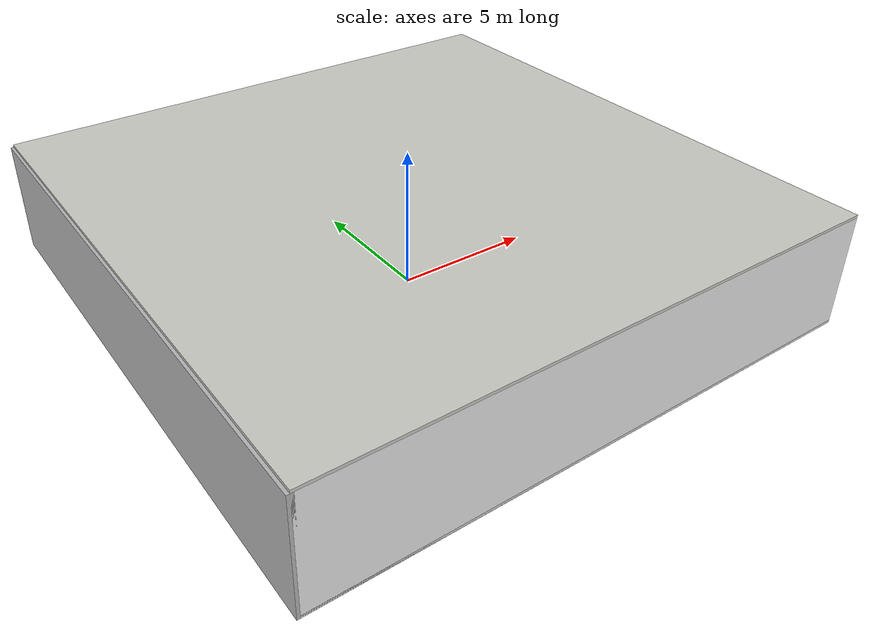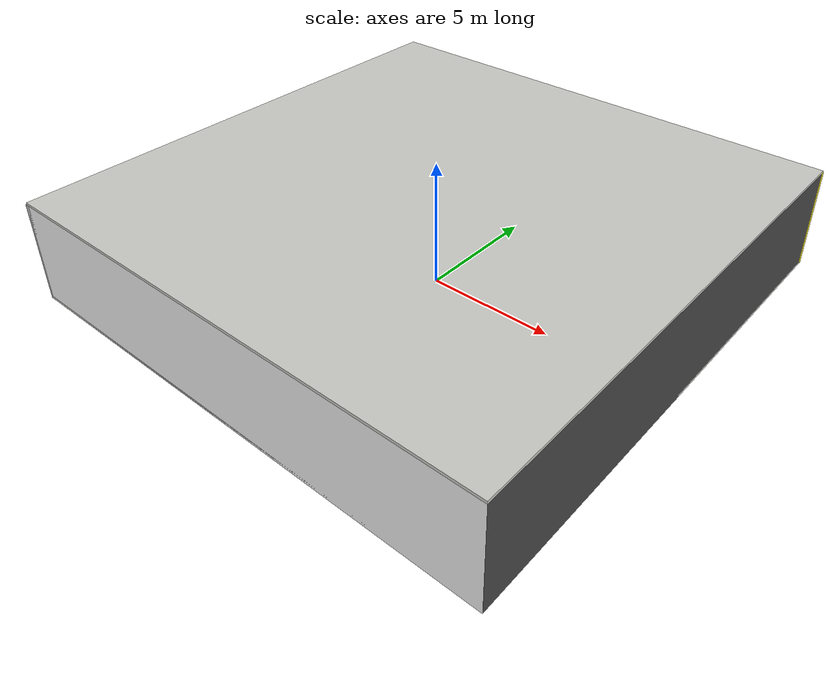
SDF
<sdf version="1.4">
 <world name="default">
  <physics type="ode">
   <max_step_size>0.001</max_step_size>
   <real_time_factor>1</real_time_factor>
   <real_time_update_rate>1000</real_time_update_rate>
   <gravity>0 0 -9.8</gravity>
  </physics>
  <scene><ambient>0.4 0.4 0.4 1</ambient><background>0.7 0.7 0.7 1</background><shadows>1</shadows></scene>
  <model name="Surrounding">
   <static>1</static>
   <link name="Ceiling">
    <collision name="Ceiling_Collision"><geometry><box><size>20 20 0.1</size></box></geometry></collision>
    <visual name="Ceiling_Visual">
     <geometry><box><size>20 20 0.1</size></box></geometry>
     <material>
      <script><uri>file://media/materials/scripts/gazebo.material</uri><name>Gazebo/CeilingTiled</name></script>
     </material>
    </visual>
    <pose>0 0 4.05 0 0 0</pose>
   </link>
   <link name="Wall_South">
    <collision name="Wall_South_Collision">
     <geometry><box><size>20 0 4</size></box></geometry>
     <pose>0 0 2 0 -0 0</pose>
    </collision>
    <visual name="Wall_South_Visual">
     <pose>0 0 2 0 -0 0</pose>
     <geometry><box><size>20 0 4</size></box></geometry>
     <material>
      <script><uri>file://media/materials/scripts/gazebo.material</uri><name>Gazebo/WhiteGlow</name></script>
     </material>
    </visual>
    <velocity_decay><linear>0</linear><angular>0</angular></velocity_decay>
    <pose>0 -10 0 0 -0 0</pose>
   </link>
   <link name="Wall_East">
    <collision name="Wall_21_Collision">
     <geometry><box><size>20 0 4</size></box></geometry>
     <pose>0 0 2 0 -0 0</pose>
    </collision>
    <visual name="Wall_21_Visual">
     <pose>0 0 2 0 -0 0</pose>
     <geometry><box><size>20 0 4</size></box></geometry>
     <material>
      <script><uri>file://media/materials/scripts/gazebo.material</uri><name>Gazebo/DarkGrey</name></script>
     </material>
    </visual>
    <velocity_decay><linear>0</linear><angular>0</angular></velocity_decay>
    <pose>10 0 0 0 -0 1.5708</pose>
   </link>
   <link name="Wall_North">
    <collision name="Wall_22_Collision">
     <geometry><box><size>20 0.2 4</size></box></geometry>
     <pose>0 0 2 0 -0 0</pose>
    </collision>
    <visual name="Wall_22_Visual">
     <pose>0 0 2 0 -0 0</pose>
     <geometry><box><size>20 0.2 4</size></box></geometry>
     <material>
      <script><uri>file://media/materials/scripts/gazebo.material</uri><name>Gazebo/Yellow</name></script>
     </material>
    </visual>
    <velocity_decay><linear>0</linear><angular>0</angular></velocity_decay>
    <pose>0 10 0 0 -0 0</pose>
   </link>
   <link name="Wall_West">
    <collision name="Wall_23_Collision">
     <geometry><box><size>20 0.2 4</size></box></geometry>
     <pose>0 0 2 0 -0 0</pose>
    </collision>
    <visual name="Wall_23_Visual">
     <pose>0 0 2 0 -0 0</pose>
     <geometry><box><size>20 0.2 4</size></box></geometry>
     <material>
      <script><uri>file://media/materials/scripts/gazebo.material</uri><name>Gazebo/LightOff</name></script>
     </material>
    </visual>
    <velocity_decay><linear>0</linear><angular>0</angular></velocity_decay>
    <pose>-10 0 0 0 0 -1.5708</pose>
   </link>
   <link name="Ground_link">
    <collision name="collision">
     <pose>0 0 .05 0 -0 0</pose>
     <geometry><box><size>20 20 0.1</size></box></geometry>
    </collision>
    <visual name="visual">
     <pose>0 0 .05 0 -0 0</pose>
     <geometry><box><size>20 20 0.1</size></box></geometry>
     <material>
      <script><uri>file://media/materials/scripts/gazebo.material</uri><name>Gazebo/CeilingTiled</name></script>
     </material>
    </visual>
   </link>
   <static>1</static>
  </model>
  <spherical_coordinates>
   <surface_model>EARTH_WGS84</surface_model>
   <latitude_deg>0</latitude_deg>
   <longitude_deg>0</longitude_deg>
   <elevation>0</elevation>
   <heading_deg>0</heading_deg>
  </spherical_coordinates>
  <light name="lightball_0" type="diffuse">
   <diffuse>0.8 0.8 0.8 1</diffuse>
   <specular>0.2 0.2 0.2 1</specular>
   <attenuation>
    <range>100</range>
    <constant>0.7</constant>
    <linear>0.01</linear>
    <quadratic>0.001</quadratic>
   </attenuation>
   <direction>-0.5 0.1 -0.9</direction>
   <pose>3.17306111272 9.55288787267 3.54548963684 0 0 0</pose>
  </light>
  <light name="lightball_1" type="diffuse">
   <diffuse>0.8 0.8 0.8 1</diffuse>
   <specular>0.2 0.2 0.2 1</specular>
   <attenuation>
    <range>100</range>
    <constant>0.7</constant>
    <linear>0.01</linear>
    <quadratic>0.001</quadratic>
   </attenuation>
   <direction>-0.5 0.1 -0.9</direction>
   <pose>9.4111014058 7.91841060406 3.53538443124 0 0 0</pose>
  </light>
  <light name="lightball_2" type="diffuse">
   <diffuse>0.8 0.8 0.8 1</diffuse>
   <specular>0.2 0.2 0.2 1</specular>
   <attenuation>
    <range>100</range>
    <constant>0.7</constant>
    <linear>0.01</linear>
    <quadratic>0.001</quadratic>
   </attenuation>
   <direction>-0.5 0.1 -0.9</direction>
   <pose>5.14907947604 3.88017784825 1.42967961256 0 0 0</pose>
  </light>
  <light name="lightball_3" type="diffuse">
   <diffuse>0.8 0.8 0.8 1</diffuse>
   <specular>0.2 0.2 0.2 1</specular>
   <attenuation>
    <range>100</range>
    <constant>0.7</constant>
    <linear>0.01</linear>
    <quadratic>0.001</quadratic>
   </attenuation>
   <direction>-0.5 0.1 -0.9</direction>
   <pose>5.64762457855 -0.161596172991 3.55373946266 0 0 0</pose>
  </light>
  <light name="lightball_4" type="diffuse">
   <diffuse>0.8 0.8 0.8 1</diffuse>
   <specular>0.2 0.2 0.2 1</specular>
   <attenuation>
    <range>100</range>
    <constant>0.7</constant>
    <linear>0.01</linear>
    <quadratic>0.001</quadratic>
   </attenuation>
   <direction>-0.5 0.1 -0.9</direction>
   <pose>3.17807427663 -6.41641306586 0.874986878338 0 0 0</pose>
  </light>
  <light name="lightball_5" type="diffuse">
   <diffuse>0.8 0.8 0.8 1</diffuse>
   <specular>0.2 0.2 0.2 1</specular>
   <attenuation>
    <range>100</range>
    <constant>0.7</constant>
    <linear>0.01</linear>
    <quadratic>0.001</quadratic>
   </attenuation>
   <direction>-0.5 0.1 -0.9</direction>
   <pose>-5.55256361842 -8.55287558768 0.603214773974 0 0 0</pose>
  </light>
  <light name="lightball_6" type="diffuse">
   <diffuse>0.8 0.8 0.8 1</diffuse>
   <specular>0.2 0.2 0.2 1</specular>
   <attenuation>
    <range>100</range>
    <constant>0.7</constant>
    <linear>0.01</linear>
    <quadratic>0.001</quadratic>
   </attenuation>
   <direction>-0.5 0.1 -0.9</direction>
   <pose>-5.19581409247 -0.964360695912 2.15327988844 0 0 0</pose>
  </light>
  <light name="lightball_7" type="diffuse">
   <diffuse>0.8 0.8 0.8 1</diffuse>
   <specular>0.2 0.2 0.2 1</specular>
   <attenuation>
    <range>100</range>
    <constant>0.7</constant>
    <linear>0.01</linear>
    <quadratic>0.001</quadratic>
   </attenuation>
   <direction>-0.5 0.1 -0.9</direction>
   <pose>-9.64473238064 4.8758070525 2.40261471799 0 0 0</pose>
  </light>
  <light name="lightball_8" type="diffuse">
   <diffuse>0.8 0.8 0.8 1</diffuse>
   <specular>0.2 0.2 0.2 1</specular>
   <attenuation>
    <range>100</range>
    <constant>0.7</constant>
    <linear>0.01</linear>
    <quadratic>0.001</quadratic>
   </attenuation>
   <direction>-0.5 0.1 -0.9</direction>
   <pose>1.4841563731 -7.90356931209 2.17043848307 0 0 0</pose>
  </light>
  <include><uri>model://cabinet</uri><pose>1.39911984052 6.43494831958 0 0 0 2.06473649492</pose></include>
  <include><uri>model://cabinet</uri><pose>7.11329155719 -4.77330227587 0 0 0 1.79700465714</pose></include>
  <include>
   <uri>model://construction_cone</uri>
   <pose>8.16096359735 3.87676575258 0 0 0 0.672944076237</pose>
  </include>
 </world>
</sdf>

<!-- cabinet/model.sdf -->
<sdf version="1.5">
  <model name="cabinet">
    <static>true</static>
    <link name="cabinet_bottom_plate">
      <inertial>
        <pose>0 0 -1 0 0 0</pose>
        <inertia>
          <ixx>2.050000</ixx>
          <ixy>0</ixy>
          <ixz>0</ixz>
          <iyy>2.050000</iyy>
          <iyz>0</iyz>
          <izz>2.050000</izz>
        </inertia>
        <mass>25.000000</mass>
      </inertial>
      <collision name="cabinet_bottom_plate_geom">
        <pose>0 0 0.010000 0 0 0</pose>
        <geometry>
          <box>
            <size>0.450000 0.450000 0.020000</size>
          </box>
        </geometry>
      </collision>
      <visual name="cabinet_bottom_plate_geom_visual">
        <pose>0 0 0.010000 0 0 0</pose>
        <geometry>
          <box>
            <size>0.450000 0.450000 0.020000</size>
          </box>
        </geometry>
        <material>
          <script>
            <uri>model://media/materials/scripts/gazebo.material</uri>
            <name>Gazebo/Wood</name>
          </script>
        </material>
      </visual>
      <collision name="cabinet_bottom_plate_geom_cabinet_back_plate">
        <pose>0.235000 0 0.510000 0 0 0</pose>
        <geometry>
          <box>
            <size>0.020000 0.450000 1.020000</size>
          </box>
        </geometry>
      </collision>
      <visual name="cabinet_bottom_plate_geom_cabinet_back_plate_visual">
        <pose>0.235000 0 0.510000 0 0 0</pose>
        <geometry>
          <box>
            <size>0.020000 0.450000 1.020000</size>
          </box>
        </geometry>
        <material>
          <script>
            <uri>model://media/materials/scripts/gazebo.material</uri>
            <name>Gazebo/Wood</name>
          </script>
        </material>
      </visual>
      <collision name="cabinet_bottom_plate_geom_cabinet_left_plate">
        <pose>0 0.235000 0.510000 0 0 0</pose>
        <geometry>
          <box>
            <size>0.450000 0.020000 1.020000</size>
          </box>
        </geometry>
      </collision>
      <visual name="cabinet_bottom_plate_geom_cabinet_left_plate_visual">
        <pose>0 0.235000 0.510000 0 0 0</pose>
        <geometry>
          <box>
            <size>0.450000 0.020000 1.020000</size>
          </box>
        </geometry>
        <material>
          <script>
            <uri>model://media/materials/scripts/gazebo.material</uri>
            <name>Gazebo/Wood</name>
          </script>
        </material>
      </visual>
      <collision name="cabinet_bottom_plate_geom_cabinet_middle_plate">
        <pose>0 0 0.510000 0 0 0</pose>
        <geometry>
          <box>
            <size>0.450000 0.450000 0.020000</size>
          </box>
        </geometry>
      </collision>
      <visual name="cabinet_bottom_plate_geom_cabinet_middle_plate_visual">
        <pose>0 0 0.510000 0 0 0</pose>
        <geometry>
          <box>
            <size>0.450000 0.450000 0.020000</size>
          </box>
        </geometry>
        <material>
          <script>
            <uri>model://media/materials/scripts/gazebo.material</uri>
            <name>Gazebo/Wood</name>
          </script>
        </material>
      </visual>
      <collision name="cabinet_bottom_plate_geom_cabinet_right_plate">
        <pose>0 -0.235000 0.510000 0 0 0</pose>
        <geometry>
          <box>
            <size>0.450000 0.020000 1.020000</size>
          </box>
        </geometry>
      </collision>
      <visual name="cabinet_bottom_plate_geom_cabinet_right_plate_visual">
        <pose>0 -0.235000 0.510000 0 0 0</pose>
        <geometry>
          <box>
            <size>0.450000 0.020000 1.020000</size>
          </box>
        </geometry>
        <material>
          <script>
            <uri>model://media/materials/scripts/gazebo.material</uri>
            <name>Gazebo/Wood</name>
          </script>
        </material>
      </visual>
      <collision name="cabinet_bottom_plate_geom_cabinet_top_plate">
        <pose>0 0 1.010000 0 0 0</pose>
        <geometry>
          <box>
            <size>0.450000 0.450000 0.020000</size>
          </box>
        </geometry>
      </collision>
      <visual name="cabinet_bottom_plate_geom_cabinet_top_plate_visual">
        <pose>0 0 1.010000 0 0 0</pose>
        <geometry>
          <box>
            <size>0.450000 0.450000 0.020000</size>
          </box>
        </geometry>
        <material>
          <script>
            <uri>model://media/materials/scripts/gazebo.material</uri>
            <name>Gazebo/Wood</name>
          </script>
        </material>
      </visual>
    </link>
  </model>
</sdf>

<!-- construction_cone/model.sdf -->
<sdf version="1.5">
  <model name="Construction Cone">
    <link name="link">
      <collision name="collision">
        <geometry>
          <mesh>
            <scale>10 10 10</scale>
            <uri>file://isr-testbed/construction_cone/meshes/construction_cone.dae</uri>
          </mesh>
        </geometry>
      </collision>
      <visual name="visual">
        <geometry>
          <mesh>
            <scale>10 10 10</scale>
            <uri>file://isr-testbed/construction_cone/meshes/construction_cone.dae</uri>
          </mesh>
        </geometry>
      </visual>
    </link>
  </model>
</sdf>
